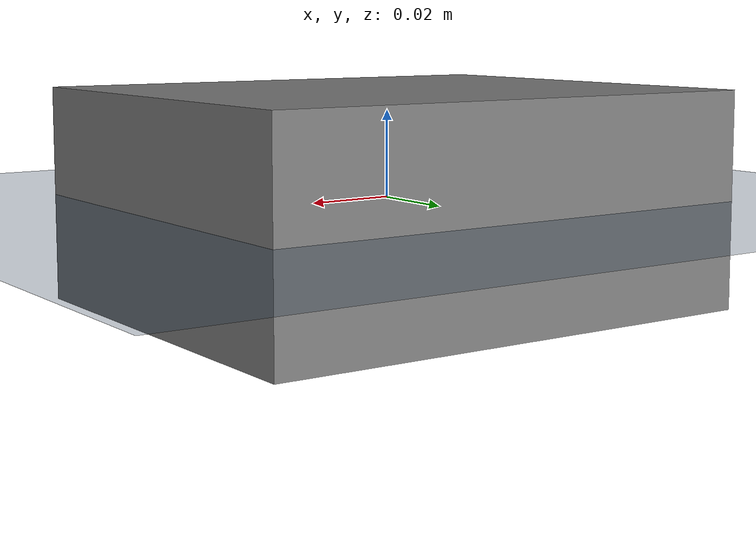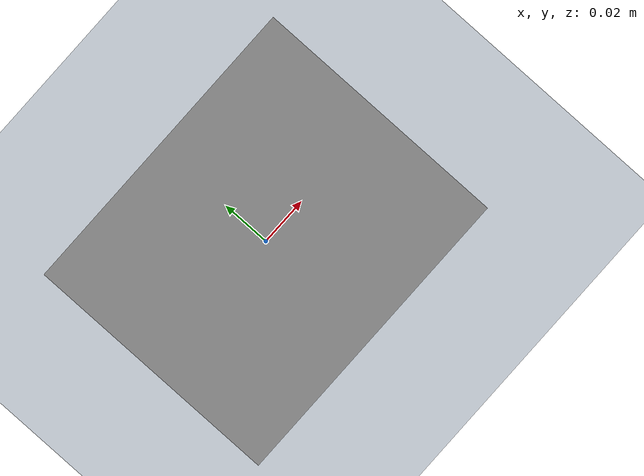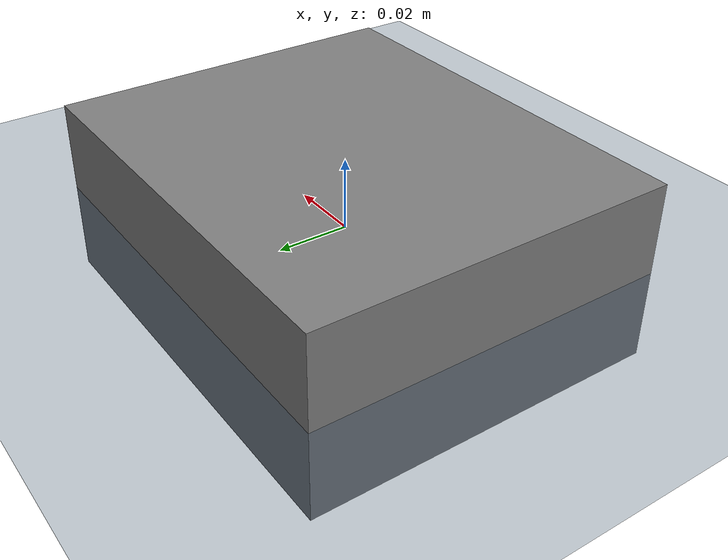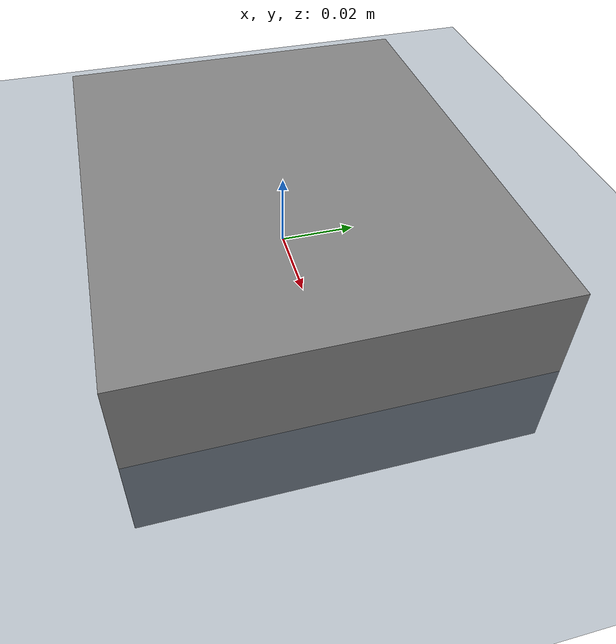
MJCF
<?xml version="1.0" ?>
<mujoco model="simulation_scene">
  <compiler angle="degree" coordinate="local" assetdir="assets"/>
  <option integrator="RK4" timestep="0.002"/>
  <actuator/>
  <visual>
    <headlight diffuse="0.6 0.6 0.6" ambient="0.3 0.3 0.3" specular="0 0 0"/>
  </visual>
  <asset>
    <texture name="grid" type="2d" builtin="checker" rgb1=".1 .2 .3" rgb2=".2 .3 .4" width="300" height="300"/>
    <material name="grid" texture="grid" texrepeat="1 1" texuniform="true"/>
    <mesh name="target_box" file="target_box.obj"/>
  </asset>
  <worldbody>
    <light pos="0 0 3" dir="0 0 -1" directional="true"/>
    <geom name="floor" size="10 10 0.1" type="plane" material="grid"/>
    <body name="target_box" pos="0.0 0.0 0.0">
      <geom type="mesh" mesh="target_box"/>
      <joint type="free"/>
    </body>
  </worldbody>
  <equality/>
</mujoco>
